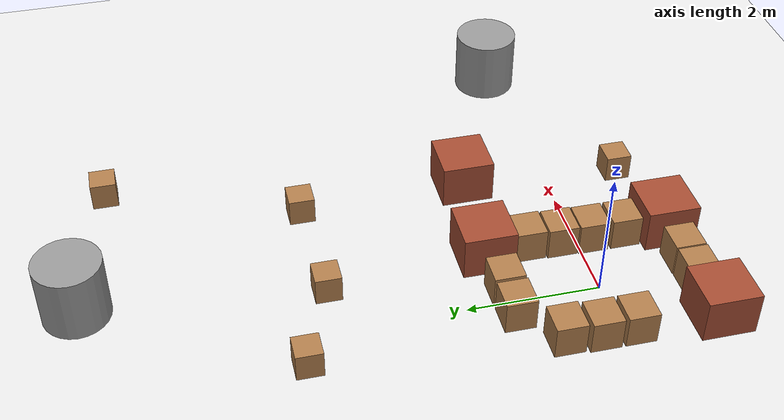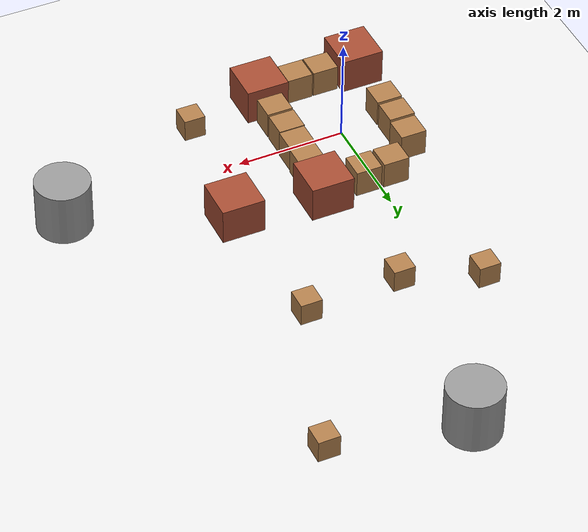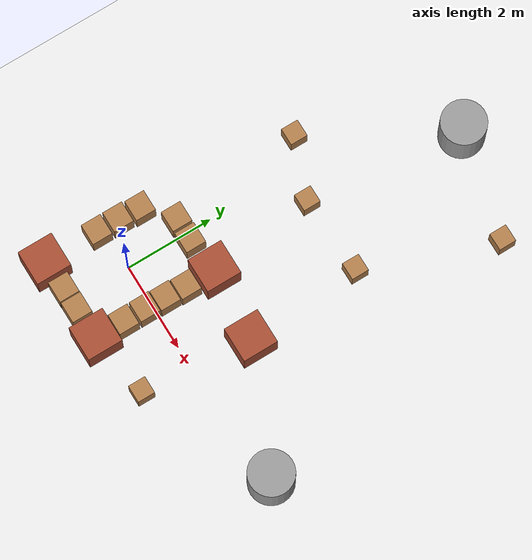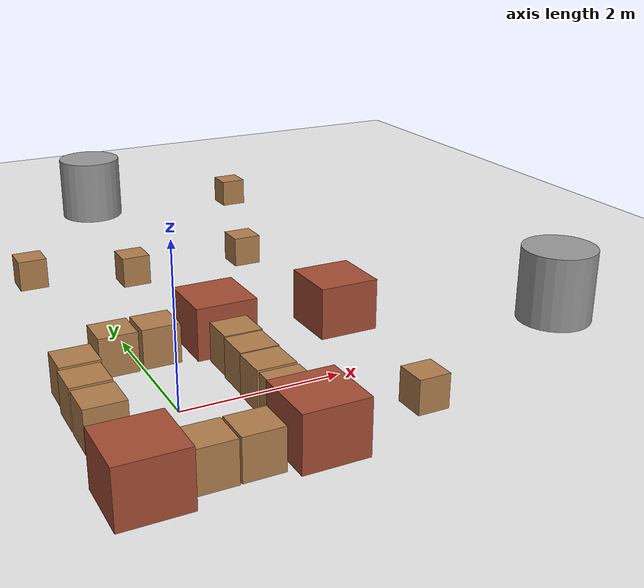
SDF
<sdf version="1.6">
 <world name="default">
  <model name="ground_plane">
   <static>1</static>
   <link name="link">
    <collision name="collision">
     <geometry><plane><normal>0 0 1</normal><size>100 100</size></plane></geometry>
     <surface><friction><ode><mu>100</mu><mu2>50</mu2></ode></friction></surface>
    </collision>
    <visual name="visual">
     <cast_shadows>0</cast_shadows>
     <geometry><plane><normal>0 0 1</normal><size>100 100</size></plane></geometry>
     <material>
      <script><uri>file://media/materials/scripts/gazebo.material</uri><name>Gazebo/White</name></script>
     </material>
    </visual>
   </link>
  </model>
  <model name="HeavyBox_2">
   <link name="link">
    <inertial>
     <mass>2</mass>
     <inertia>
      <ixx>0.0402452</ixx>
      <ixy>0</ixy>
      <ixz>0</ixz>
      <iyy>0.0399236</iyy>
      <iyz>0</iyz>
      <izz>0.0461707</izz>
     </inertia>
    </inertial>
    <visual name="visual">
     <geometry><box><size>0.79482 0.800386 0.684447</size></box></geometry>
     <material>
      <script><name>Gazebo/Bricks</name><uri>file://media/materials/scripts/gazebo.material</uri></script>
      <ambient>0.3 0.3 0.3 1</ambient>
      <diffuse>0.7 0.7 0.7 1</diffuse>
      <specular>0.01 0.01 0.01 1</specular>
      <emissive>0 0 0 1</emissive>
     </material>
    </visual>
    <collision name="collision">
     <geometry><box><size>0.79482 0.800386 0.684447</size></box></geometry>
     <surface>
      <friction>
       <ode><mu>1</mu><mu2>1</mu2><fdir1>0 0 0</fdir1><slip1>0</slip1><slip2>0</slip2></ode>
       <torsional>
        <coefficient>1</coefficient>
        <patch_radius>0</patch_radius>
        <surface_radius>0</surface_radius>
        <use_patch_radius>1</use_patch_radius>
        <ode><slip>0</slip></ode>
       </torsional>
      </friction>
      <bounce><restitution_coefficient>0</restitution_coefficient><threshold>1e+06</threshold></bounce>
      <contact>
       <collide_without_contact>0</collide_without_contact>
       <collide_without_contact_bitmask>1</collide_without_contact_bitmask>
       <collide_bitmask>1</collide_bitmask>
       <ode>
        <soft_cfm>0</soft_cfm>
        <soft_erp>0.2</soft_erp>
        <kp>1e+13</kp>
        <kd>1</kd>
        <max_vel>0.01</max_vel>
        <min_depth>0</min_depth>
       </ode>
       <bullet>
        <split_impulse>1</split_impulse>
        <split_impulse_penetration_threshold>-0.01</split_impulse_penetration_threshold>
        <soft_cfm>0</soft_cfm>
        <soft_erp>0.2</soft_erp>
        <kp>1e+13</kp>
        <kd>1</kd>
       </bullet>
      </contact>
     </surface>
    </collision>
   </link>
   <static>0</static>
   <pose>-0.910015 -1.43287 0.342219 -1.2e-05 -0 -5.8e-05</pose>
  </model>
  <model name="Box_0">
   <link name="link">
    <inertial>
     <mass>0.01</mass>
     <inertia>
      <ixx>0.00455697</ixx>
      <ixy>0</ixy>
      <ixz>0</ixz>
      <iyy>0.00475558</iyy>
      <iyz>0</iyz>
      <izz>0.00426137</izz>
     </inertia>
    </inertial>
    <visual name="visual">
     <geometry><box><size>0.483208 0.461193 0.514245</size></box></geometry>
     <material>
      <script><name>Gazebo/WoodFloor</name><uri>file://media/materials/scripts/gazebo.material</uri></script>
      <ambient>0.3 0.3 0.3 1</ambient>
      <diffuse>0.7 0.7 0.7 1</diffuse>
      <specular>0.01 0.01 0.01 1</specular>
      <emissive>0 0 0 1</emissive>
     </material>
    </visual>
    <collision name="collision">
     <geometry><box><size>0.483208 0.461193 0.514245</size></box></geometry>
     <surface>
      <friction>
       <ode><mu>1</mu><mu2>1</mu2><fdir1>0 0 0</fdir1><slip1>0</slip1><slip2>0</slip2></ode>
       <torsional>
        <coefficient>1</coefficient>
        <patch_radius>0</patch_radius>
        <surface_radius>0</surface_radius>
        <use_patch_radius>1</use_patch_radius>
        <ode><slip>0</slip></ode>
       </torsional>
      </friction>
      <bounce><restitution_coefficient>0</restitution_coefficient><threshold>1e+06</threshold></bounce>
      <contact>
       <collide_without_contact>0</collide_without_contact>
       <collide_without_contact_bitmask>1</collide_without_contact_bitmask>
       <collide_bitmask>1</collide_bitmask>
       <ode>
        <soft_cfm>0</soft_cfm>
        <soft_erp>0.2</soft_erp>
        <kp>1e+13</kp>
        <kd>1</kd>
        <max_vel>0.01</max_vel>
        <min_depth>0</min_depth>
       </ode>
       <bullet>
        <split_impulse>1</split_impulse>
        <split_impulse_penetration_threshold>-0.01</split_impulse_penetration_threshold>
        <soft_cfm>0</soft_cfm>
        <soft_erp>0.2</soft_erp>
        <kp>1e+13</kp>
        <kd>1</kd>
       </bullet>
      </contact>
     </surface>
    </collision>
   </link>
   <static>0</static>
   <pose>-0.9238 -0.184873 0.257122 0 -0 0</pose>
  </model>
  <model name="Box_1">
   <link name="link">
    <inertial>
     <mass>0.01</mass>
     <inertia>
      <ixx>0.00455697</ixx>
      <ixy>0</ixy>
      <ixz>0</ixz>
      <iyy>0.00475558</iyy>
      <iyz>0</iyz>
      <izz>0.00426137</izz>
     </inertia>
    </inertial>
    <visual name="visual">
     <geometry><box><size>0.483208 0.461193 0.514245</size></box></geometry>
     <material>
      <script><name>Gazebo/WoodFloor</name><uri>file://media/materials/scripts/gazebo.material</uri></script>
      <ambient>0.3 0.3 0.3 1</ambient>
      <diffuse>0.7 0.7 0.7 1</diffuse>
      <specular>0.01 0.01 0.01 1</specular>
      <emissive>0 0 0 1</emissive>
     </material>
    </visual>
    <collision name="collision">
     <geometry><box><size>0.483208 0.461193 0.514245</size></box></geometry>
     <surface>
      <friction>
       <ode><mu>1</mu><mu2>1</mu2><fdir1>0 0 0</fdir1><slip1>0</slip1><slip2>0</slip2></ode>
       <torsional>
        <coefficient>1</coefficient>
        <patch_radius>0</patch_radius>
        <surface_radius>0</surface_radius>
        <use_patch_radius>1</use_patch_radius>
        <ode><slip>0</slip></ode>
       </torsional>
      </friction>
      <bounce><restitution_coefficient>0</restitution_coefficient><threshold>1e+06</threshold></bounce>
      <contact>
       <collide_without_contact>0</collide_without_contact>
       <collide_without_contact_bitmask>1</collide_without_contact_bitmask>
       <collide_bitmask>1</collide_bitmask>
       <ode>
        <soft_cfm>0</soft_cfm>
        <soft_erp>0.2</soft_erp>
        <kp>1e+13</kp>
        <kd>1</kd>
        <max_vel>0.01</max_vel>
        <min_depth>0</min_depth>
       </ode>
       <bullet>
        <split_impulse>1</split_impulse>
        <split_impulse_penetration_threshold>-0.01</split_impulse_penetration_threshold>
        <soft_cfm>0</soft_cfm>
        <soft_erp>0.2</soft_erp>
        <kp>1e+13</kp>
        <kd>1</kd>
       </bullet>
      </contact>
     </surface>
    </collision>
   </link>
   <static>0</static>
   <pose>-0.922789 0.329549 0.257122 0 -0 0</pose>
  </model>
  <model name="Box_2">
   <link name="link">
    <inertial>
     <mass>0.01</mass>
     <inertia>
      <ixx>0.00455697</ixx>
      <ixy>0</ixy>
      <ixz>0</ixz>
      <iyy>0.00475558</iyy>
      <iyz>0</iyz>
      <izz>0.00426137</izz>
     </inertia>
    </inertial>
    <visual name="visual">
     <geometry><box><size>0.483208 0.461193 0.514245</size></box></geometry>
     <material>
      <script><name>Gazebo/WoodFloor</name><uri>file://media/materials/scripts/gazebo.material</uri></script>
      <ambient>0.3 0.3 0.3 1</ambient>
      <diffuse>0.7 0.7 0.7 1</diffuse>
      <specular>0.01 0.01 0.01 1</specular>
      <emissive>0 0 0 1</emissive>
     </material>
    </visual>
    <collision name="collision">
     <geometry><box><size>0.483208 0.461193 0.514245</size></box></geometry>
     <surface>
      <friction>
       <ode><mu>1</mu><mu2>1</mu2><fdir1>0 0 0</fdir1><slip1>0</slip1><slip2>0</slip2></ode>
       <torsional>
        <coefficient>1</coefficient>
        <patch_radius>0</patch_radius>
        <surface_radius>0</surface_radius>
        <use_patch_radius>1</use_patch_radius>
        <ode><slip>0</slip></ode>
       </torsional>
      </friction>
      <bounce><restitution_coefficient>0</restitution_coefficient><threshold>1e+06</threshold></bounce>
      <contact>
       <collide_without_contact>0</collide_without_contact>
       <collide_without_contact_bitmask>1</collide_without_contact_bitmask>
       <collide_bitmask>1</collide_bitmask>
       <ode>
        <soft_cfm>0</soft_cfm>
        <soft_erp>0.2</soft_erp>
        <kp>1e+13</kp>
        <kd>1</kd>
        <max_vel>0.01</max_vel>
        <min_depth>0</min_depth>
       </ode>
       <bullet>
        <split_impulse>1</split_impulse>
        <split_impulse_penetration_threshold>-0.01</split_impulse_penetration_threshold>
        <soft_cfm>0</soft_cfm>
        <soft_erp>0.2</soft_erp>
        <kp>1e+13</kp>
        <kd>1</kd>
       </bullet>
      </contact>
     </surface>
    </collision>
   </link>
   <static>0</static>
   <pose>-0.892794 0.843712 0.257122 0 -0 0</pose>
  </model>
  <model name="Box_4">
   <link name="link">
    <inertial>
     <mass>0.01</mass>
     <inertia>
      <ixx>0.00455697</ixx>
      <ixy>0</ixy>
      <ixz>0</ixz>
      <iyy>0.00475558</iyy>
      <iyz>0</iyz>
      <izz>0.00426137</izz>
     </inertia>
    </inertial>
    <visual name="visual">
     <geometry><box><size>0.483208 0.461193 0.514245</size></box></geometry>
     <material>
      <script><name>Gazebo/WoodFloor</name><uri>file://media/materials/scripts/gazebo.material</uri></script>
      <ambient>0.3 0.3 0.3 1</ambient>
      <diffuse>0.7 0.7 0.7 1</diffuse>
      <specular>0.01 0.01 0.01 1</specular>
      <emissive>0 0 0 1</emissive>
     </material>
    </visual>
    <collision name="collision">
     <geometry><box><size>0.483208 0.461193 0.514245</size></box></geometry>
     <surface>
      <friction>
       <ode><mu>1</mu><mu2>1</mu2><fdir1>0 0 0</fdir1><slip1>0</slip1><slip2>0</slip2></ode>
       <torsional>
        <coefficient>1</coefficient>
        <patch_radius>0</patch_radius>
        <surface_radius>0</surface_radius>
        <use_patch_radius>1</use_patch_radius>
        <ode><slip>0</slip></ode>
       </torsional>
      </friction>
      <bounce><restitution_coefficient>0</restitution_coefficient><threshold>1e+06</threshold></bounce>
      <contact>
       <collide_without_contact>0</collide_without_contact>
       <collide_without_contact_bitmask>1</collide_without_contact_bitmask>
       <collide_bitmask>1</collide_bitmask>
       <ode>
        <soft_cfm>0</soft_cfm>
        <soft_erp>0.2</soft_erp>
        <kp>1e+13</kp>
        <kd>1</kd>
        <max_vel>0.01</max_vel>
        <min_depth>0</min_depth>
       </ode>
       <bullet>
        <split_impulse>1</split_impulse>
        <split_impulse_penetration_threshold>-0.01</split_impulse_penetration_threshold>
        <soft_cfm>0</soft_cfm>
        <soft_erp>0.2</soft_erp>
        <kp>1e+13</kp>
        <kd>1</kd>
       </bullet>
      </contact>
     </surface>
    </collision>
   </link>
   <static>0</static>
   <pose>-0.227566 -1.38976 0.257122 0 0 -2.9e-05</pose>
  </model>
  <model name="Box_5">
   <link name="link">
    <inertial>
     <mass>0.01</mass>
     <inertia>
      <ixx>0.00455697</ixx>
      <ixy>0</ixy>
      <ixz>0</ixz>
      <iyy>0.00475558</iyy>
      <iyz>0</iyz>
      <izz>0.00426137</izz>
     </inertia>
    </inertial>
    <visual name="visual">
     <geometry><box><size>0.483208 0.461193 0.514245</size></box></geometry>
     <material>
      <script><name>Gazebo/WoodFloor</name><uri>file://media/materials/scripts/gazebo.material</uri></script>
      <ambient>0.3 0.3 0.3 1</ambient>
      <diffuse>0.7 0.7 0.7 1</diffuse>
      <specular>0.01 0.01 0.01 1</specular>
      <emissive>0 0 0 1</emissive>
     </material>
    </visual>
    <collision name="collision">
     <geometry><box><size>0.483208 0.461193 0.514245</size></box></geometry>
     <surface>
      <friction>
       <ode><mu>1</mu><mu2>1</mu2><fdir1>0 0 0</fdir1><slip1>0</slip1><slip2>0</slip2></ode>
       <torsional>
        <coefficient>1</coefficient>
        <patch_radius>0</patch_radius>
        <surface_radius>0</surface_radius>
        <use_patch_radius>1</use_patch_radius>
        <ode><slip>0</slip></ode>
       </torsional>
      </friction>
      <bounce><restitution_coefficient>0</restitution_coefficient><threshold>1e+06</threshold></bounce>
      <contact>
       <collide_without_contact>0</collide_without_contact>
       <collide_without_contact_bitmask>1</collide_without_contact_bitmask>
       <collide_bitmask>1</collide_bitmask>
       <ode>
        <soft_cfm>0</soft_cfm>
        <soft_erp>0.2</soft_erp>
        <kp>1e+13</kp>
        <kd>1</kd>
        <max_vel>0.01</max_vel>
        <min_depth>0</min_depth>
       </ode>
       <bullet>
        <split_impulse>1</split_impulse>
        <split_impulse_penetration_threshold>-0.01</split_impulse_penetration_threshold>
        <soft_cfm>0</soft_cfm>
        <soft_erp>0.2</soft_erp>
        <kp>1e+13</kp>
        <kd>1</kd>
       </bullet>
      </contact>
     </surface>
    </collision>
   </link>
   <static>0</static>
   <pose>0.279819 -1.3846 0.257122 0 0 -2.4e-05</pose>
  </model>
  <model name="HeavyBox_3">
   <link name="link">
    <inertial>
     <mass>2</mass>
     <inertia>
      <ixx>0.0402452</ixx>
      <ixy>0</ixy>
      <ixz>0</ixz>
      <iyy>0.0399236</iyy>
      <iyz>0</iyz>
      <izz>0.0461707</izz>
     </inertia>
    </inertial>
    <visual name="visual">
     <geometry><box><size>0.79482 0.800386 0.684447</size></box></geometry>
     <material>
      <script><name>Gazebo/Bricks</name><uri>file://media/materials/scripts/gazebo.material</uri></script>
      <ambient>0.3 0.3 0.3 1</ambient>
      <diffuse>0.7 0.7 0.7 1</diffuse>
      <specular>0.01 0.01 0.01 1</specular>
      <emissive>0 0 0 1</emissive>
     </material>
    </visual>
    <collision name="collision">
     <geometry><box><size>0.79482 0.800386 0.684447</size></box></geometry>
     <surface>
      <friction>
       <ode><mu>1</mu><mu2>1</mu2><fdir1>0 0 0</fdir1><slip1>0</slip1><slip2>0</slip2></ode>
       <torsional>
        <coefficient>1</coefficient>
        <patch_radius>0</patch_radius>
        <surface_radius>0</surface_radius>
        <use_patch_radius>1</use_patch_radius>
        <ode><slip>0</slip></ode>
       </torsional>
      </friction>
      <bounce><restitution_coefficient>0</restitution_coefficient><threshold>1e+06</threshold></bounce>
      <contact>
       <collide_without_contact>0</collide_without_contact>
       <collide_without_contact_bitmask>1</collide_without_contact_bitmask>
       <collide_bitmask>1</collide_bitmask>
       <ode>
        <soft_cfm>0</soft_cfm>
        <soft_erp>0.2</soft_erp>
        <kp>1e+13</kp>
        <kd>1</kd>
        <max_vel>0.01</max_vel>
        <min_depth>0</min_depth>
       </ode>
       <bullet>
        <split_impulse>1</split_impulse>
        <split_impulse_penetration_threshold>-0.01</split_impulse_penetration_threshold>
        <soft_cfm>0</soft_cfm>
        <soft_erp>0.2</soft_erp>
        <kp>1e+13</kp>
        <kd>1</kd>
       </bullet>
      </contact>
     </surface>
    </collision>
   </link>
   <static>0</static>
   <pose>1.0079 -1.3546 0.342219 1.2e-05 -0 3.4e-05</pose>
  </model>
  <model name="Box_6">
   <link name="link">
    <inertial>
     <mass>0.01</mass>
     <inertia>
      <ixx>0.00455697</ixx>
      <ixy>0</ixy>
      <ixz>0</ixz>
      <iyy>0.00475558</iyy>
      <iyz>0</iyz>
      <izz>0.00426137</izz>
     </inertia>
    </inertial>
    <visual name="visual">
     <geometry><box><size>0.483208 0.461193 0.514245</size></box></geometry>
     <material>
      <script><name>Gazebo/WoodFloor</name><uri>file://media/materials/scripts/gazebo.material</uri></script>
      <ambient>0.3 0.3 0.3 1</ambient>
      <diffuse>0.7 0.7 0.7 1</diffuse>
      <specular>0.01 0.01 0.01 1</specular>
      <emissive>0 0 0 1</emissive>
     </material>
    </visual>
    <collision name="collision">
     <geometry><box><size>0.483208 0.461193 0.514245</size></box></geometry>
     <surface>
      <friction>
       <ode><mu>1</mu><mu2>1</mu2><fdir1>0 0 0</fdir1><slip1>0</slip1><slip2>0</slip2></ode>
       <torsional>
        <coefficient>1</coefficient>
        <patch_radius>0</patch_radius>
        <surface_radius>0</surface_radius>
        <use_patch_radius>1</use_patch_radius>
        <ode><slip>0</slip></ode>
       </torsional>
      </friction>
      <bounce><restitution_coefficient>0</restitution_coefficient><threshold>1e+06</threshold></bounce>
      <contact>
       <collide_without_contact>0</collide_without_contact>
       <collide_without_contact_bitmask>1</collide_without_contact_bitmask>
       <collide_bitmask>1</collide_bitmask>
       <ode>
        <soft_cfm>0</soft_cfm>
        <soft_erp>0.2</soft_erp>
        <kp>1e+13</kp>
        <kd>1</kd>
        <max_vel>0.01</max_vel>
        <min_depth>0</min_depth>
       </ode>
       <bullet>
        <split_impulse>1</split_impulse>
        <split_impulse_penetration_threshold>-0.01</split_impulse_penetration_threshold>
        <soft_cfm>0</soft_cfm>
        <soft_erp>0.2</soft_erp>
        <kp>1e+13</kp>
        <kd>1</kd>
       </bullet>
      </contact>
     </surface>
    </collision>
   </link>
   <static>0</static>
   <pose>1.00077 -0.692545 0.257122 0 -0 0</pose>
  </model>
  <model name="Box_7">
   <link name="link">
    <inertial>
     <mass>0.01</mass>
     <inertia>
      <ixx>0.00455697</ixx>
      <ixy>0</ixy>
      <ixz>0</ixz>
      <iyy>0.00475558</iyy>
      <iyz>0</iyz>
      <izz>0.00426137</izz>
     </inertia>
    </inertial>
    <visual name="visual">
     <geometry><box><size>0.483208 0.461193 0.514245</size></box></geometry>
     <material>
      <script><name>Gazebo/WoodFloor</name><uri>file://media/materials/scripts/gazebo.material</uri></script>
      <ambient>0.3 0.3 0.3 1</ambient>
      <diffuse>0.7 0.7 0.7 1</diffuse>
      <specular>0.01 0.01 0.01 1</specular>
      <emissive>0 0 0 1</emissive>
     </material>
    </visual>
    <collision name="collision">
     <geometry><box><size>0.483208 0.461193 0.514245</size></box></geometry>
     <surface>
      <friction>
       <ode><mu>1</mu><mu2>1</mu2><fdir1>0 0 0</fdir1><slip1>0</slip1><slip2>0</slip2></ode>
       <torsional>
        <coefficient>1</coefficient>
        <patch_radius>0</patch_radius>
        <surface_radius>0</surface_radius>
        <use_patch_radius>1</use_patch_radius>
        <ode><slip>0</slip></ode>
       </torsional>
      </friction>
      <bounce><restitution_coefficient>0</restitution_coefficient><threshold>1e+06</threshold></bounce>
      <contact>
       <collide_without_contact>0</collide_without_contact>
       <collide_without_contact_bitmask>1</collide_without_contact_bitmask>
       <collide_bitmask>1</collide_bitmask>
       <ode>
        <soft_cfm>0</soft_cfm>
        <soft_erp>0.2</soft_erp>
        <kp>1e+13</kp>
        <kd>1</kd>
        <max_vel>0.01</max_vel>
        <min_depth>0</min_depth>
       </ode>
       <bullet>
        <split_impulse>1</split_impulse>
        <split_impulse_penetration_threshold>-0.01</split_impulse_penetration_threshold>
        <soft_cfm>0</soft_cfm>
        <soft_erp>0.2</soft_erp>
        <kp>1e+13</kp>
        <kd>1</kd>
       </bullet>
      </contact>
     </surface>
    </collision>
   </link>
   <static>0</static>
   <pose>1.01776 0.295686 0.257122 0 -0 1e-06</pose>
  </model>
  <model name="Box_8">
   <link name="link">
    <inertial>
     <mass>0.01</mass>
     <inertia>
      <ixx>0.00455697</ixx>
      <ixy>0</ixy>
      <ixz>0</ixz>
      <iyy>0.00475558</iyy>
      <iyz>0</iyz>
      <izz>0.00426137</izz>
     </inertia>
    </inertial>
    <visual name="visual">
     <geometry><box><size>0.483208 0.461193 0.514245</size></box></geometry>
     <material>
      <script><name>Gazebo/WoodFloor</name><uri>file://media/materials/scripts/gazebo.material</uri></script>
      <ambient>0.3 0.3 0.3 1</ambient>
      <diffuse>0.7 0.7 0.7 1</diffuse>
      <specular>0.01 0.01 0.01 1</specular>
      <emissive>0 0 0 1</emissive>
     </material>
    </visual>
    <collision name="collision">
     <geometry><box><size>0.483208 0.461193 0.514245</size></box></geometry>
     <surface>
      <friction>
       <ode><mu>1</mu><mu2>1</mu2><fdir1>0 0 0</fdir1><slip1>0</slip1><slip2>0</slip2></ode>
       <torsional>
        <coefficient>1</coefficient>
        <patch_radius>0</patch_radius>
        <surface_radius>0</surface_radius>
        <use_patch_radius>1</use_patch_radius>
        <ode><slip>0</slip></ode>
       </torsional>
      </friction>
      <bounce><restitution_coefficient>0</restitution_coefficient><threshold>1e+06</threshold></bounce>
      <contact>
       <collide_without_contact>0</collide_without_contact>
       <collide_without_contact_bitmask>1</collide_without_contact_bitmask>
       <collide_bitmask>1</collide_bitmask>
       <ode>
        <soft_cfm>0</soft_cfm>
        <soft_erp>0.2</soft_erp>
        <kp>1e+13</kp>
        <kd>1</kd>
        <max_vel>0.01</max_vel>
        <min_depth>0</min_depth>
       </ode>
       <bullet>
        <split_impulse>1</split_impulse>
        <split_impulse_penetration_threshold>-0.01</split_impulse_penetration_threshold>
        <soft_cfm>0</soft_cfm>
        <soft_erp>0.2</soft_erp>
        <kp>1e+13</kp>
        <kd>1</kd>
       </bullet>
      </contact>
     </surface>
    </collision>
   </link>
   <static>0</static>
   <pose>1.00187 -0.183727 0.257122 0 -0 1e-06</pose>
  </model>
  <model name="HeavyBox_4">
   <link name="link">
    <inertial>
     <mass>2</mass>
     <inertia>
      <ixx>0.0402452</ixx>
      <ixy>0</ixy>
      <ixz>0</ixz>
      <iyy>0.0399236</iyy>
      <iyz>0</iyz>
      <izz>0.0461707</izz>
     </inertia>
    </inertial>
    <visual name="visual">
     <geometry><box><size>0.79482 0.800386 0.684447</size></box></geometry>
     <material>
      <script><name>Gazebo/Bricks</name><uri>file://media/materials/scripts/gazebo.material</uri></script>
      <ambient>0.3 0.3 0.3 1</ambient>
      <diffuse>0.7 0.7 0.7 1</diffuse>
      <specular>0.01 0.01 0.01 1</specular>
      <emissive>0 0 0 1</emissive>
     </material>
    </visual>
    <collision name="collision">
     <geometry><box><size>0.79482 0.800386 0.684447</size></box></geometry>
     <surface>
      <friction>
       <ode><mu>1</mu><mu2>1</mu2><fdir1>0 0 0</fdir1><slip1>0</slip1><slip2>0</slip2></ode>
       <torsional>
        <coefficient>1</coefficient>
        <patch_radius>0</patch_radius>
        <surface_radius>0</surface_radius>
        <use_patch_radius>1</use_patch_radius>
        <ode><slip>0</slip></ode>
       </torsional>
      </friction>
      <bounce><restitution_coefficient>0</restitution_coefficient><threshold>1e+06</threshold></bounce>
      <contact>
       <collide_without_contact>0</collide_without_contact>
       <collide_without_contact_bitmask>1</collide_without_contact_bitmask>
       <collide_bitmask>1</collide_bitmask>
       <ode>
        <soft_cfm>0</soft_cfm>
        <soft_erp>0.2</soft_erp>
        <kp>1e+13</kp>
        <kd>1</kd>
        <max_vel>0.01</max_vel>
        <min_depth>0</min_depth>
       </ode>
       <bullet>
        <split_impulse>1</split_impulse>
        <split_impulse_penetration_threshold>-0.01</split_impulse_penetration_threshold>
        <soft_cfm>0</soft_cfm>
        <soft_erp>0.2</soft_erp>
        <kp>1e+13</kp>
        <kd>1</kd>
       </bullet>
      </contact>
     </surface>
    </collision>
   </link>
   <static>0</static>
   <pose>1.05426 1.46286 0.342219 -1.2e-05 -0 2.3e-05</pose>
  </model>
  <model name="Box_9">
   <link name="link">
    <inertial>
     <mass>0.01</mass>
     <inertia>
      <ixx>0.00455697</ixx>
      <ixy>0</ixy>
      <ixz>0</ixz>
      <iyy>0.00475558</iyy>
      <iyz>0</iyz>
      <izz>0.00426137</izz>
     </inertia>
    </inertial>
    <visual name="visual">
     <geometry><box><size>0.483208 0.461193 0.514245</size></box></geometry>
     <material>
      <script><name>Gazebo/WoodFloor</name><uri>file://media/materials/scripts/gazebo.material</uri></script>
      <ambient>0.3 0.3 0.3 1</ambient>
      <diffuse>0.7 0.7 0.7 1</diffuse>
      <specular>0.01 0.01 0.01 1</specular>
      <emissive>0 0 0 1</emissive>
     </material>
    </visual>
    <collision name="collision">
     <geometry><box><size>0.483208 0.461193 0.514245</size></box></geometry>
     <surface>
      <friction>
       <ode><mu>1</mu><mu2>1</mu2><fdir1>0 0 0</fdir1><slip1>0</slip1><slip2>0</slip2></ode>
       <torsional>
        <coefficient>1</coefficient>
        <patch_radius>0</patch_radius>
        <surface_radius>0</surface_radius>
        <use_patch_radius>1</use_patch_radius>
        <ode><slip>0</slip></ode>
       </torsional>
      </friction>
      <bounce><restitution_coefficient>0</restitution_coefficient><threshold>1e+06</threshold></bounce>
      <contact>
       <collide_without_contact>0</collide_without_contact>
       <collide_without_contact_bitmask>1</collide_without_contact_bitmask>
       <collide_bitmask>1</collide_bitmask>
       <ode>
        <soft_cfm>0</soft_cfm>
        <soft_erp>0.2</soft_erp>
        <kp>1e+13</kp>
        <kd>1</kd>
        <max_vel>0.01</max_vel>
        <min_depth>0</min_depth>
       </ode>
       <bullet>
        <split_impulse>1</split_impulse>
        <split_impulse_penetration_threshold>-0.01</split_impulse_penetration_threshold>
        <soft_cfm>0</soft_cfm>
        <soft_erp>0.2</soft_erp>
        <kp>1e+13</kp>
        <kd>1</kd>
       </bullet>
      </contact>
     </surface>
    </collision>
   </link>
   <static>0</static>
   <pose>-0.297671 1.36802 0.257122 0 -0 0</pose>
  </model>
  <model name="Box_10">
   <link name="link">
    <inertial>
     <mass>0.01</mass>
     <inertia>
      <ixx>0.00455697</ixx>
      <ixy>0</ixy>
      <ixz>0</ixz>
      <iyy>0.00475558</iyy>
      <iyz>0</iyz>
      <izz>0.00426137</izz>
     </inertia>
    </inertial>
    <visual name="visual">
     <geometry><box><size>0.483208 0.461193 0.514245</size></box></geometry>
     <material>
      <script><name>Gazebo/WoodFloor</name><uri>file://media/materials/scripts/gazebo.material</uri></script>
      <ambient>0.3 0.3 0.3 1</ambient>
      <diffuse>0.7 0.7 0.7 1</diffuse>
      <specular>0.01 0.01 0.01 1</specular>
      <emissive>0 0 0 1</emissive>
     </material>
    </visual>
    <collision name="collision">
     <geometry><box><size>0.483208 0.461193 0.514245</size></box></geometry>
     <surface>
      <friction>
       <ode><mu>1</mu><mu2>1</mu2><fdir1>0 0 0</fdir1><slip1>0</slip1><slip2>0</slip2></ode>
       <torsional>
        <coefficient>1</coefficient>
        <patch_radius>0</patch_radius>
        <surface_radius>0</surface_radius>
        <use_patch_radius>1</use_patch_radius>
        <ode><slip>0</slip></ode>
       </torsional>
      </friction>
      <bounce><restitution_coefficient>0</restitution_coefficient><threshold>1e+06</threshold></bounce>
      <contact>
       <collide_without_contact>0</collide_without_contact>
       <collide_without_contact_bitmask>1</collide_without_contact_bitmask>
       <collide_bitmask>1</collide_bitmask>
       <ode>
        <soft_cfm>0</soft_cfm>
        <soft_erp>0.2</soft_erp>
        <kp>1e+13</kp>
        <kd>1</kd>
        <max_vel>0.01</max_vel>
        <min_depth>0</min_depth>
       </ode>
       <bullet>
        <split_impulse>1</split_impulse>
        <split_impulse_penetration_threshold>-0.01</split_impulse_penetration_threshold>
        <soft_cfm>0</soft_cfm>
        <soft_erp>0.2</soft_erp>
        <kp>1e+13</kp>
        <kd>1</kd>
       </bullet>
      </contact>
     </surface>
    </collision>
   </link>
   <static>0</static>
   <pose>0.235099 1.37485 0.257122 0 -0 0</pose>
  </model>
  <model name="Box_13">
   <link name="link">
    <inertial>
     <mass>0.01</mass>
     <inertia>
      <ixx>0.00455697</ixx>
      <ixy>0</ixy>
      <ixz>0</ixz>
      <iyy>0.00475558</iyy>
      <iyz>0</iyz>
      <izz>0.00426137</izz>
     </inertia>
    </inertial>
    <visual name="visual">
     <geometry><box><size>0.483208 0.461193 0.514245</size></box></geometry>
     <material>
      <script><name>Gazebo/WoodFloor</name><uri>file://media/materials/scripts/gazebo.material</uri></script>
      <ambient>0.3 0.3 0.3 1</ambient>
      <diffuse>0.7 0.7 0.7 1</diffuse>
      <specular>0.01 0.01 0.01 1</specular>
      <emissive>0 0 0 1</emissive>
     </material>
    </visual>
    <collision name="collision">
     <geometry><box><size>0.483208 0.461193 0.514245</size></box></geometry>
     <surface>
      <friction>
       <ode><mu>1</mu><mu2>1</mu2><fdir1>0 0 0</fdir1><slip1>0</slip1><slip2>0</slip2></ode>
       <torsional>
        <coefficient>1</coefficient>
        <patch_radius>0</patch_radius>
        <surface_radius>0</surface_radius>
        <use_patch_radius>1</use_patch_radius>
        <ode><slip>0</slip></ode>
       </torsional>
      </friction>
      <bounce><restitution_coefficient>0</restitution_coefficient><threshold>1e+06</threshold></bounce>
      <contact>
       <collide_without_contact>0</collide_without_contact>
       <collide_without_contact_bitmask>1</collide_without_contact_bitmask>
       <collide_bitmask>1</collide_bitmask>
       <ode>
        <soft_cfm>0</soft_cfm>
        <soft_erp>0.2</soft_erp>
        <kp>1e+13</kp>
        <kd>1</kd>
        <max_vel>0.01</max_vel>
        <min_depth>0</min_depth>
       </ode>
       <bullet>
        <split_impulse>1</split_impulse>
        <split_impulse_penetration_threshold>-0.01</split_impulse_penetration_threshold>
        <soft_cfm>0</soft_cfm>
        <soft_erp>0.2</soft_erp>
        <kp>1e+13</kp>
        <kd>1</kd>
       </bullet>
      </contact>
     </surface>
    </collision>
   </link>
   <static>0</static>
   <pose>1.03808 0.782871 0.257122 0 -0 0</pose>
  </model>
  <model name="HighRock_3">
   <link name="link_0">
    <inertial>
     <mass>5</mass>
     <inertia><ixx>0.145833</ixx><ixy>0</ixy><ixz>0</ixz><iyy>0.145833</iyy><iyz>0</iyz><izz>0.125</izz></inertia>
    </inertial>
    <visual name="visual">
     <geometry><cylinder><radius>0.5</radius><length>1</length></cylinder></geometry>
     <material>
      <lighting>1</lighting>
      <script><uri>file://media/materials/scripts/gazebo.material</uri><name>Gazebo/Gray</name></script>
      <ambient>0.3 0.3 0.3 1</ambient>
      <diffuse>0.7 0.7 0.7 1</diffuse>
      <specular>0.01 0.01 0.01 1</specular>
      <emissive>0 0 0 1</emissive>
     </material>
    </visual>
    <collision name="collision">
     <geometry><cylinder><radius>0.5</radius><length>1</length></cylinder></geometry>
     <surface>
      <friction>
       <ode><mu>1</mu><mu2>1</mu2><fdir1>0 0 0</fdir1><slip1>0</slip1><slip2>0</slip2></ode>
       <torsional>
        <coefficient>1</coefficient>
        <patch_radius>0</patch_radius>
        <surface_radius>0</surface_radius>
        <use_patch_radius>1</use_patch_radius>
        <ode><slip>0</slip></ode>
       </torsional>
      </friction>
      <bounce><restitution_coefficient>0</restitution_coefficient><threshold>1e+06</threshold></bounce>
      <contact>
       <collide_without_contact>0</collide_without_contact>
       <collide_without_contact_bitmask>1</collide_without_contact_bitmask>
       <collide_bitmask>1</collide_bitmask>
       <ode>
        <soft_cfm>0</soft_cfm>
        <soft_erp>0.2</soft_erp>
        <kp>1e+13</kp>
        <kd>1</kd>
        <max_vel>0.01</max_vel>
        <min_depth>0</min_depth>
       </ode>
       <bullet>
        <split_impulse>1</split_impulse>
        <split_impulse_penetration_threshold>-0.01</split_impulse_penetration_threshold>
        <soft_cfm>0</soft_cfm>
        <soft_erp>0.2</soft_erp>
        <kp>1e+13</kp>
        <kd>1</kd>
       </bullet>
      </contact>
     </surface>
    </collision>
   </link>
   <static>0</static>
   <pose>1.20663 7.42037 0.499999 -1e-06 -0 -6e-06</pose>
  </model>
  <model name="HighRock_4">
   <link name="link_0">
    <inertial>
     <mass>5</mass>
     <inertia><ixx>0.145833</ixx><ixy>0</ixy><ixz>0</ixz><iyy>0.145833</iyy><iyz>0</iyz><izz>0.125</izz></inertia>
    </inertial>
    <visual name="visual">
     <geometry><cylinder><radius>0.5</radius><length>1</length></cylinder></geometry>
     <material>
      <lighting>1</lighting>
      <script><uri>file://media/materials/scripts/gazebo.material</uri><name>Gazebo/Gray</name></script>
      <ambient>0.3 0.3 0.3 1</ambient>
      <diffuse>0.7 0.7 0.7 1</diffuse>
      <specular>0.01 0.01 0.01 1</specular>
      <emissive>0 0 0 1</emissive>
     </material>
    </visual>
    <collision name="collision">
     <geometry><cylinder><radius>0.5</radius><length>1</length></cylinder></geometry>
     <surface>
      <friction>
       <ode><mu>1</mu><mu2>1</mu2><fdir1>0 0 0</fdir1><slip1>0</slip1><slip2>0</slip2></ode>
       <torsional>
        <coefficient>1</coefficient>
        <patch_radius>0</patch_radius>
        <surface_radius>0</surface_radius>
        <use_patch_radius>1</use_patch_radius>
        <ode><slip>0</slip></ode>
       </torsional>
      </friction>
      <bounce><restitution_coefficient>0</restitution_coefficient><threshold>1e+06</threshold></bounce>
      <contact>
       <collide_without_contact>0</collide_without_contact>
       <collide_without_contact_bitmask>1</collide_without_contact_bitmask>
       <collide_bitmask>1</collide_bitmask>
       <ode>
        <soft_cfm>0</soft_cfm>
        <soft_erp>0.2</soft_erp>
        <kp>1e+13</kp>
        <kd>1</kd>
        <max_vel>0.01</max_vel>
        <min_depth>0</min_depth>
       </ode>
       <bullet>
        <split_impulse>1</split_impulse>
        <split_impulse_penetration_threshold>-0.01</split_impulse_penetration_threshold>
        <soft_cfm>0</soft_cfm>
        <soft_erp>0.2</soft_erp>
        <kp>1e+13</kp>
        <kd>1</kd>
       </bullet>
      </contact>
     </surface>
    </collision>
   </link>
   <static>0</static>
   <pose>5.39548 0.167857 0.499999 0 0 -4e-06</pose>
  </model>
  <model name="HeavyBox_6">
   <link name="link">
    <inertial>
     <mass>2</mass>
     <inertia>
      <ixx>0.0402452</ixx>
      <ixy>0</ixy>
      <ixz>0</ixz>
      <iyy>0.0399236</iyy>
      <iyz>0</iyz>
      <izz>0.0461707</izz>
     </inertia>
    </inertial>
    <visual name="visual">
     <geometry><box><size>0.79482 0.800386 0.684447</size></box></geometry>
     <material>
      <script><name>Gazebo/Bricks</name><uri>file://media/materials/scripts/gazebo.material</uri></script>
      <ambient>0.3 0.3 0.3 1</ambient>
      <diffuse>0.7 0.7 0.7 1</diffuse>
      <specular>0.01 0.01 0.01 1</specular>
      <emissive>0 0 0 1</emissive>
     </material>
    </visual>
    <collision name="collision">
     <geometry><box><size>0.79482 0.800386 0.684447</size></box></geometry>
     <surface>
      <friction>
       <ode><mu>1</mu><mu2>1</mu2><fdir1>0 0 0</fdir1><slip1>0</slip1><slip2>0</slip2></ode>
       <torsional>
        <coefficient>1</coefficient>
        <patch_radius>0</patch_radius>
        <surface_radius>0</surface_radius>
        <use_patch_radius>1</use_patch_radius>
        <ode><slip>0</slip></ode>
       </torsional>
      </friction>
      <bounce><restitution_coefficient>0</restitution_coefficient><threshold>1e+06</threshold></bounce>
      <contact>
       <collide_without_contact>0</collide_without_contact>
       <collide_without_contact_bitmask>1</collide_without_contact_bitmask>
       <collide_bitmask>1</collide_bitmask>
       <ode>
        <soft_cfm>0</soft_cfm>
        <soft_erp>0.2</soft_erp>
        <kp>1e+13</kp>
        <kd>1</kd>
        <max_vel>0.01</max_vel>
        <min_depth>0</min_depth>
       </ode>
       <bullet>
        <split_impulse>1</split_impulse>
        <split_impulse_penetration_threshold>-0.01</split_impulse_penetration_threshold>
        <soft_cfm>0</soft_cfm>
        <soft_erp>0.2</soft_erp>
        <kp>1e+13</kp>
        <kd>1</kd>
       </bullet>
      </contact>
     </surface>
    </collision>
   </link>
   <static>0</static>
   <pose>2.69259 1.33775 0.342219 0 1.1e-05 -0.00013</pose>
  </model>
  <model name="Box_15">
   <link name="link_0">
    <inertial>
     <mass>0.01</mass>
     <inertia>
      <ixx>0.00187998</ixx>
      <ixy>0</ixy>
      <ixz>0</ixz>
      <iyy>0.00189171</iyy>
      <iyz>0</iyz>
      <izz>0.0017286</izz>
     </inertia>
    </inertial>
    <visual name="visual">
     <geometry><box><size>0.39572 0.393033 0.428759</size></box></geometry>
     <material>
      <lighting>1</lighting>
      <script><uri>file://media/materials/scripts/gazebo.material</uri><name>Gazebo/WoodFloor</name></script>
      <ambient>0.3 0.3 0.3 1</ambient>
      <diffuse>0.7 0.7 0.7 1</diffuse>
      <specular>0.01 0.01 0.01 1</specular>
      <emissive>0 0 0 1</emissive>
     </material>
    </visual>
    <collision name="collision">
     <geometry><box><size>0.39572 0.393033 0.428759</size></box></geometry>
     <surface>
      <friction>
       <ode><mu>1</mu><mu2>1</mu2><fdir1>0 0 0</fdir1><slip1>0</slip1><slip2>0</slip2></ode>
       <torsional>
        <coefficient>1</coefficient>
        <patch_radius>0</patch_radius>
        <surface_radius>0</surface_radius>
        <use_patch_radius>1</use_patch_radius>
        <ode><slip>0</slip></ode>
       </torsional>
      </friction>
      <bounce><restitution_coefficient>0</restitution_coefficient><threshold>1e+06</threshold></bounce>
      <contact>
       <collide_without_contact>0</collide_without_contact>
       <collide_without_contact_bitmask>1</collide_without_contact_bitmask>
       <collide_bitmask>1</collide_bitmask>
       <ode>
        <soft_cfm>0</soft_cfm>
        <soft_erp>0.2</soft_erp>
        <kp>1e+13</kp>
        <kd>1</kd>
        <max_vel>0.01</max_vel>
        <min_depth>0</min_depth>
       </ode>
       <bullet>
        <split_impulse>1</split_impulse>
        <split_impulse_penetration_threshold>-0.01</split_impulse_penetration_threshold>
        <soft_cfm>0</soft_cfm>
        <soft_erp>0.2</soft_erp>
        <kp>1e+13</kp>
        <kd>1</kd>
       </bullet>
      </contact>
     </surface>
    </collision>
   </link>
   <static>0</static>
   <pose>0.776954 3.88372 0.257122 0 -0 0</pose>
  </model>
  <model name="Box_16">
   <link name="link_0">
    <inertial>
     <mass>0.01</mass>
     <inertia>
      <ixx>0.00187998</ixx>
      <ixy>0</ixy>
      <ixz>0</ixz>
      <iyy>0.00189171</iyy>
      <iyz>0</iyz>
      <izz>0.0017286</izz>
     </inertia>
    </inertial>
    <visual name="visual">
     <geometry><box><size>0.39572 0.393033 0.428759</size></box></geometry>
     <material>
      <lighting>1</lighting>
      <script><uri>file://media/materials/scripts/gazebo.material</uri><name>Gazebo/WoodFloor</name></script>
      <ambient>0.3 0.3 0.3 1</ambient>
      <diffuse>0.7 0.7 0.7 1</diffuse>
      <specular>0.01 0.01 0.01 1</specular>
      <emissive>0 0 0 1</emissive>
     </material>
    </visual>
    <collision name="collision">
     <geometry><box><size>0.39572 0.393033 0.428759</size></box></geometry>
     <surface>
      <friction>
       <ode><mu>1</mu><mu2>1</mu2><fdir1>0 0 0</fdir1><slip1>0</slip1><slip2>0</slip2></ode>
       <torsional>
        <coefficient>1</coefficient>
        <patch_radius>0</patch_radius>
        <surface_radius>0</surface_radius>
        <use_patch_radius>1</use_patch_radius>
        <ode><slip>0</slip></ode>
       </torsional>
      </friction>
      <bounce><restitution_coefficient>0</restitution_coefficient><threshold>1e+06</threshold></bounce>
      <contact>
       <collide_without_contact>0</collide_without_contact>
       <collide_without_contact_bitmask>1</collide_without_contact_bitmask>
       <collide_bitmask>1</collide_bitmask>
       <ode>
        <soft_cfm>0</soft_cfm>
        <soft_erp>0.2</soft_erp>
        <kp>1e+13</kp>
        <kd>1</kd>
        <max_vel>0.01</max_vel>
        <min_depth>0</min_depth>
       </ode>
       <bullet>
        <split_impulse>1</split_impulse>
        <split_impulse_penetration_threshold>-0.01</split_impulse_penetration_threshold>
        <soft_cfm>0</soft_cfm>
        <soft_erp>0.2</soft_erp>
        <kp>1e+13</kp>
        <kd>1</kd>
       </bullet>
      </contact>
     </surface>
    </collision>
   </link>
   <static>0</static>
   <pose>3.60501 6.8855 0.257122 0 -0 0</pose>
  </model>
  <model name="Box_19">
   <link name="link_0">
    <inertial>
     <mass>0.01</mass>
     <inertia>
      <ixx>0.00187998</ixx>
      <ixy>0</ixy>
      <ixz>0</ixz>
      <iyy>0.00189171</iyy>
      <iyz>0</iyz>
      <izz>0.0017286</izz>
     </inertia>
    </inertial>
    <visual name="visual">
     <geometry><box><size>0.39572 0.393033 0.428759</size></box></geometry>
     <material>
      <lighting>1</lighting>
      <script><uri>file://media/materials/scripts/gazebo.material</uri><name>Gazebo/WoodFloor</name></script>
      <ambient>0.3 0.3 0.3 1</ambient>
      <diffuse>0.7 0.7 0.7 1</diffuse>
      <specular>0.01 0.01 0.01 1</specular>
      <emissive>0 0 0 1</emissive>
     </material>
    </visual>
    <collision name="collision">
     <geometry><box><size>0.39572 0.393033 0.428759</size></box></geometry>
     <surface>
      <friction>
       <ode><mu>1</mu><mu2>1</mu2><fdir1>0 0 0</fdir1><slip1>0</slip1><slip2>0</slip2></ode>
       <torsional>
        <coefficient>1</coefficient>
        <patch_radius>0</patch_radius>
        <surface_radius>0</surface_radius>
        <use_patch_radius>1</use_patch_radius>
        <ode><slip>0</slip></ode>
       </torsional>
      </friction>
      <bounce><restitution_coefficient>0</restitution_coefficient><threshold>1e+06</threshold></bounce>
      <contact>
       <collide_without_contact>0</collide_without_contact>
       <collide_without_contact_bitmask>1</collide_without_contact_bitmask>
       <collide_bitmask>1</collide_bitmask>
       <ode>
        <soft_cfm>0</soft_cfm>
        <soft_erp>0.2</soft_erp>
        <kp>1e+13</kp>
        <kd>1</kd>
        <max_vel>0.01</max_vel>
        <min_depth>0</min_depth>
       </ode>
       <bullet>
        <split_impulse>1</split_impulse>
        <split_impulse_penetration_threshold>-0.01</split_impulse_penetration_threshold>
        <soft_cfm>0</soft_cfm>
        <soft_erp>0.2</soft_erp>
        <kp>1e+13</kp>
        <kd>1</kd>
       </bullet>
      </contact>
     </surface>
    </collision>
   </link>
   <static>0</static>
   <pose>-0.575059 4.40097 0.257122 0 -0 0</pose>
  </model>
  <model name="Box_36">
   <link name="link_0">
    <inertial>
     <mass>0.01</mass>
     <inertia>
      <ixx>0.00187998</ixx>
      <ixy>0</ixy>
      <ixz>0</ixz>
      <iyy>0.00189171</iyy>
      <iyz>0</iyz>
      <izz>0.0017286</izz>
     </inertia>
    </inertial>
    <visual name="visual">
     <geometry><box><size>0.39572 0.393033 0.428759</size></box></geometry>
     <material>
      <lighting>1</lighting>
      <script><uri>file://media/materials/scripts/gazebo.material</uri><name>Gazebo/WoodFloor</name></script>
      <ambient>0.3 0.3 0.3 1</ambient>
      <diffuse>0.7 0.7 0.7 1</diffuse>
      <specular>0.01 0.01 0.01 1</specular>
      <emissive>0 0 0 1</emissive>
     </material>
    </visual>
    <collision name="collision">
     <geometry><box><size>0.39572 0.393033 0.428759</size></box></geometry>
     <surface>
      <friction>
       <ode><mu>1</mu><mu2>1</mu2><fdir1>0 0 0</fdir1><slip1>0</slip1><slip2>0</slip2></ode>
       <torsional>
        <coefficient>1</coefficient>
        <patch_radius>0</patch_radius>
        <surface_radius>0</surface_radius>
        <use_patch_radius>1</use_patch_radius>
        <ode><slip>0</slip></ode>
       </torsional>
      </friction>
      <bounce><restitution_coefficient>0</restitution_coefficient><threshold>1e+06</threshold></bounce>
      <contact>
       <collide_without_contact>0</collide_without_contact>
       <collide_without_contact_bitmask>1</collide_without_contact_bitmask>
       <collide_bitmask>1</collide_bitmask>
       <ode>
        <soft_cfm>0</soft_cfm>
        <soft_erp>0.2</soft_erp>
        <kp>1e+13</kp>
        <kd>1</kd>
        <max_vel>0.01</max_vel>
        <min_depth>0</min_depth>
       </ode>
       <bullet>
        <split_impulse>1</split_impulse>
        <split_impulse_penetration_threshold>-0.01</split_impulse_penetration_threshold>
        <soft_cfm>0</soft_cfm>
        <soft_erp>0.2</soft_erp>
        <kp>1e+13</kp>
        <kd>1</kd>
       </bullet>
      </contact>
     </surface>
    </collision>
   </link>
   <static>0</static>
   <pose>2.4476 -1.13225 0.257122 0 -0 0</pose>
  </model>
  <model name="Box_37">
   <link name="link_0">
    <inertial>
     <mass>0.01</mass>
     <inertia>
      <ixx>0.00187998</ixx>
      <ixy>0</ixy>
      <ixz>0</ixz>
      <iyy>0.00189171</iyy>
      <iyz>0</iyz>
      <izz>0.0017286</izz>
     </inertia>
    </inertial>
    <visual name="visual">
     <geometry><box><size>0.39572 0.393033 0.428759</size></box></geometry>
     <material>
      <lighting>1</lighting>
      <script><uri>file://media/materials/scripts/gazebo.material</uri><name>Gazebo/WoodFloor</name></script>
      <ambient>0.3 0.3 0.3 1</ambient>
      <diffuse>0.7 0.7 0.7 1</diffuse>
      <specular>0.01 0.01 0.01 1</specular>
      <emissive>0 0 0 1</emissive>
     </material>
    </visual>
    <collision name="collision">
     <geometry><box><size>0.39572 0.393033 0.428759</size></box></geometry>
     <surface>
      <friction>
       <ode><mu>1</mu><mu2>1</mu2><fdir1>0 0 0</fdir1><slip1>0</slip1><slip2>0</slip2></ode>
       <torsional>
        <coefficient>1</coefficient>
        <patch_radius>0</patch_radius>
        <surface_radius>0</surface_radius>
        <use_patch_radius>1</use_patch_radius>
        <ode><slip>0</slip></ode>
       </torsional>
      </friction>
      <bounce><restitution_coefficient>0</restitution_coefficient><threshold>1e+06</threshold></bounce>
      <contact>
       <collide_without_contact>0</collide_without_contact>
       <collide_without_contact_bitmask>1</collide_without_contact_bitmask>
       <collide_bitmask>1</collide_bitmask>
       <ode>
        <soft_cfm>0</soft_cfm>
        <soft_erp>0.2</soft_erp>
        <kp>1e+13</kp>
        <kd>1</kd>
        <max_vel>0.01</max_vel>
        <min_depth>0</min_depth>
       </ode>
       <bullet>
        <split_impulse>1</split_impulse>
        <split_impulse_penetration_threshold>-0.01</split_impulse_penetration_threshold>
        <soft_cfm>0</soft_cfm>
        <soft_erp>0.2</soft_erp>
        <kp>1e+13</kp>
        <kd>1</kd>
       </bullet>
      </contact>
     </surface>
    </collision>
   </link>
   <static>0</static>
   <pose>2.54367 3.95829 0.257122 0 -0 0</pose>
  </model>
 </world>
</sdf>
